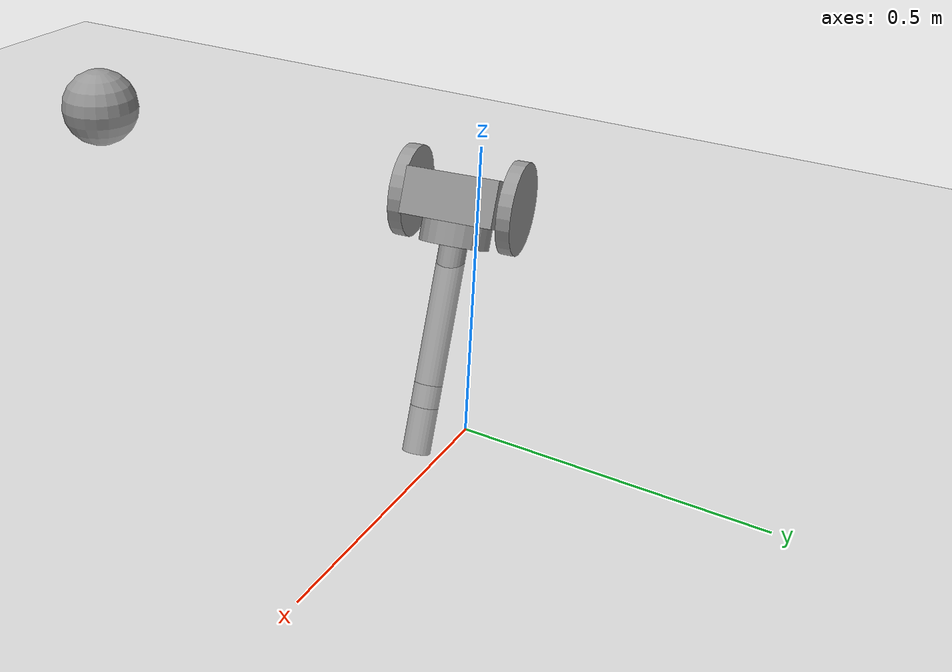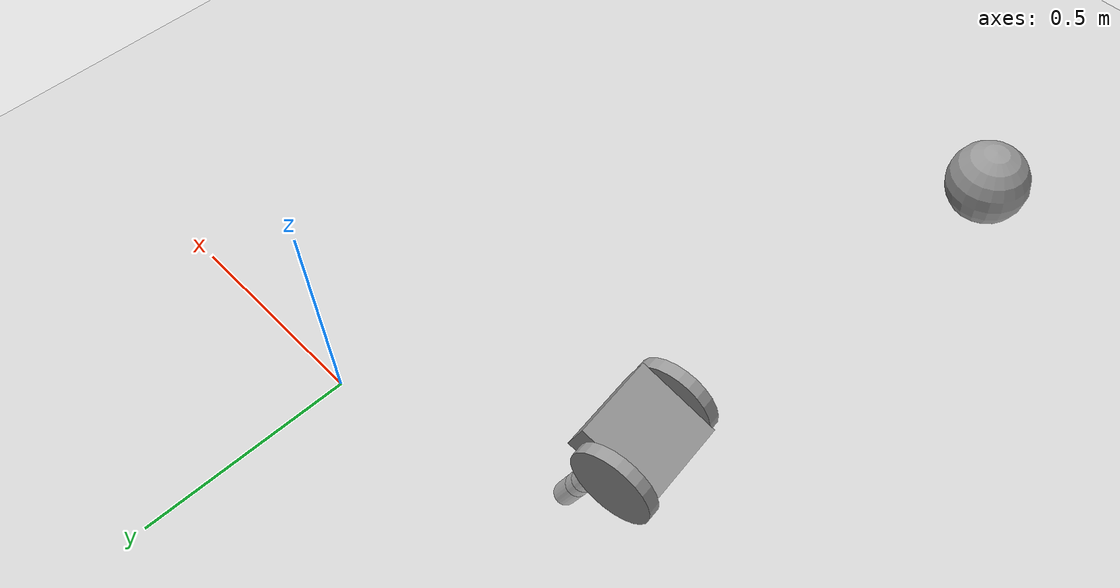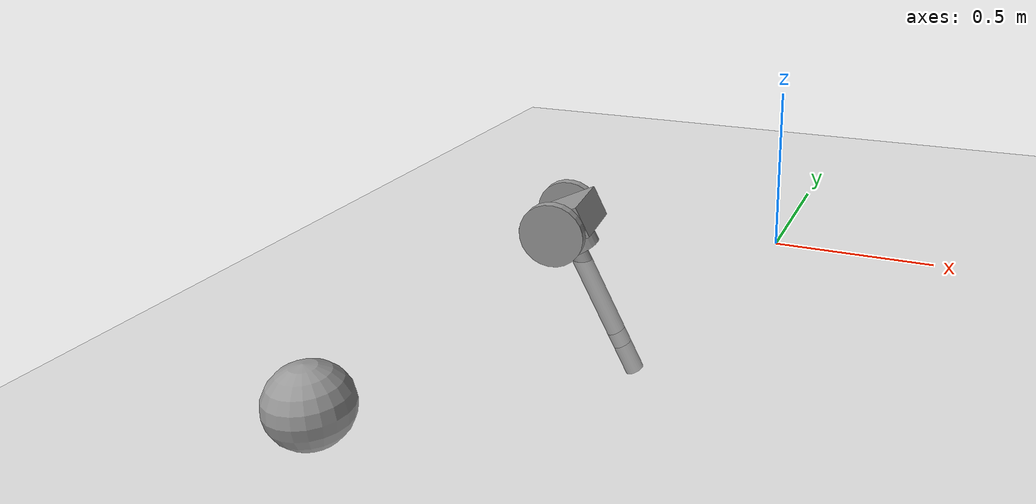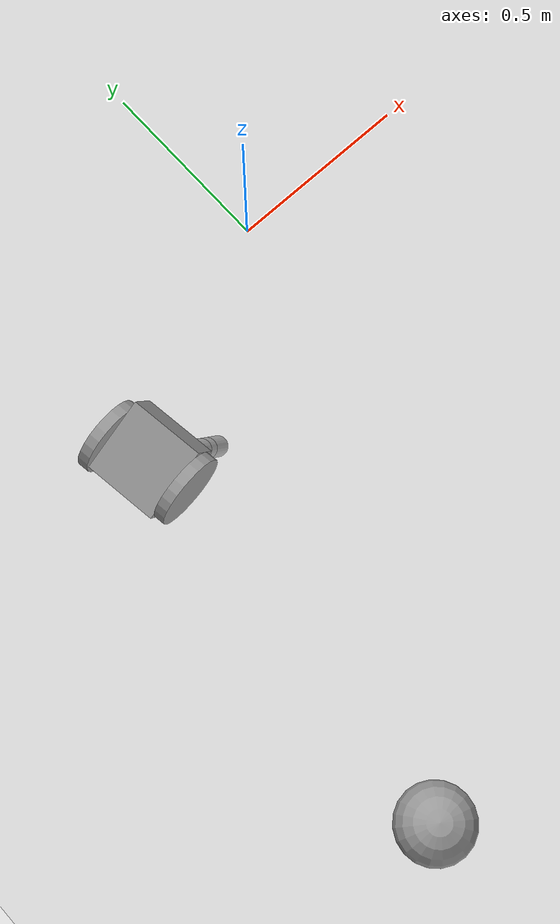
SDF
<sdf version="1.6">
 <world name="default">
  <model name="ground_plane">
   <static>1</static>
   <link name="link">
    <collision name="collision">
     <geometry><plane><normal>0 0 1</normal><size>100 100</size></plane></geometry>
     <surface><friction><ode><mu>100</mu><mu2>50</mu2></ode></friction></surface>
    </collision>
    <visual name="visual">
     <cast_shadows>0</cast_shadows>
     <geometry><plane><normal>0 0 1</normal><size>100 100</size></plane></geometry>
     <material>
      <script><uri>file://media/materials/scripts/gazebo.material</uri><name>Gazebo/Grey</name></script>
     </material>
    </visual>
   </link>
  </model>
  <model name="project1_model_0">
   <link name="link_0">
    <pose>-0 0 0.2 0 -0 0</pose>
    <inertial>
     <mass>1</mass>
     <inertia>
      <ixx>0.166667</ixx>
      <ixy>0</ixy>
      <ixz>0</ixz>
      <iyy>0.166667</iyy>
      <iyz>0</iyz>
      <izz>0.166667</izz>
     </inertia>
    </inertial>
    <visual name="visual">
     <geometry><box><size>0.2 0.2 0.1</size></box></geometry>
     <material>
      <lighting>1</lighting>
      <script><uri>file://media/materials/scripts/gazebo.material</uri><name>Gazebo/Grey</name></script>
      <shader type="pixel"><normal_map>__default__</normal_map></shader>
      <ambient>0.3 0.3 0.3 1</ambient>
      <diffuse>0.7 0.7 0.7 1</diffuse>
      <specular>0.01 0.01 0.01 1</specular>
      <emissive>0 0 0 1</emissive>
     </material>
    </visual>
    <collision name="collision">
     <geometry><box><size>0.2 0.2 0.1</size></box></geometry>
     <surface>
      <friction>
       <ode><mu>1</mu><mu2>1</mu2><fdir1>0 0 0</fdir1><slip1>0</slip1><slip2>0</slip2></ode>
       <torsional>
        <coefficient>1</coefficient>
        <patch_radius>0</patch_radius>
        <surface_radius>0</surface_radius>
        <use_patch_radius>1</use_patch_radius>
        <ode><slip>0</slip></ode>
       </torsional>
      </friction>
      <bounce><restitution_coefficient>0</restitution_coefficient><threshold>1e+06</threshold></bounce>
      <contact>
       <collide_without_contact>0</collide_without_contact>
       <collide_without_contact_bitmask>1</collide_without_contact_bitmask>
       <collide_bitmask>1</collide_bitmask>
       <ode>
        <soft_cfm>0</soft_cfm>
        <soft_erp>0.2</soft_erp>
        <kp>1e+13</kp>
        <kd>1</kd>
        <max_vel>0.01</max_vel>
        <min_depth>0</min_depth>
       </ode>
       <bullet>
        <split_impulse>1</split_impulse>
        <split_impulse_penetration_threshold>-0.01</split_impulse_penetration_threshold>
        <soft_cfm>0</soft_cfm>
        <soft_erp>0.2</soft_erp>
        <kp>1e+13</kp>
        <kd>1</kd>
       </bullet>
      </contact>
     </surface>
    </collision>
   </link>
   <link name="link_1">
    <pose>-0 -0.115013 0.2 1.5707 -0 0</pose>
    <inertial>
     <mass>1</mass>
     <inertia><ixx>0.145833</ixx><ixy>0</ixy><ixz>0</ixz><iyy>0.145833</iyy><iyz>0</iyz><izz>0.125</izz></inertia>
    </inertial>
    <visual name="visual">
     <geometry><cylinder><radius>0.1</radius><length>0.03</length></cylinder></geometry>
     <material>
      <lighting>1</lighting>
      <script><uri>file://media/materials/scripts/gazebo.material</uri><name>Gazebo/Grey</name></script>
      <shader type="pixel"><normal_map>__default__</normal_map></shader>
      <ambient>0.3 0.3 0.3 1</ambient>
      <diffuse>0.7 0.7 0.7 1</diffuse>
      <specular>0.01 0.01 0.01 1</specular>
      <emissive>0 0 0 1</emissive>
     </material>
    </visual>
    <collision name="collision">
     <geometry><cylinder><radius>0.1</radius><length>0.03</length></cylinder></geometry>
     <surface>
      <friction>
       <ode><mu>1</mu><mu2>1</mu2><fdir1>0 0 0</fdir1><slip1>0</slip1><slip2>0</slip2></ode>
       <torsional>
        <coefficient>1</coefficient>
        <patch_radius>0</patch_radius>
        <surface_radius>0</surface_radius>
        <use_patch_radius>1</use_patch_radius>
        <ode><slip>0</slip></ode>
       </torsional>
      </friction>
      <bounce><restitution_coefficient>0</restitution_coefficient><threshold>1e+06</threshold></bounce>
      <contact>
       <collide_without_contact>0</collide_without_contact>
       <collide_without_contact_bitmask>1</collide_without_contact_bitmask>
       <collide_bitmask>1</collide_bitmask>
       <ode>
        <soft_cfm>0</soft_cfm>
        <soft_erp>0.2</soft_erp>
        <kp>1e+13</kp>
        <kd>1</kd>
        <max_vel>0.01</max_vel>
        <min_depth>0</min_depth>
       </ode>
       <bullet>
        <split_impulse>1</split_impulse>
        <split_impulse_penetration_threshold>-0.01</split_impulse_penetration_threshold>
        <soft_cfm>0</soft_cfm>
        <soft_erp>0.2</soft_erp>
        <kp>1e+13</kp>
        <kd>1</kd>
       </bullet>
      </contact>
     </surface>
    </collision>
   </link>
   <link name="link_1_clone">
    <pose>0.02 0.115 0.2 1.5707 -0 0</pose>
    <inertial>
     <mass>1</mass>
     <inertia><ixx>0.145833</ixx><ixy>0</ixy><ixz>0</ixz><iyy>0.145833</iyy><iyz>0</iyz><izz>0.125</izz></inertia>
    </inertial>
    <visual name="visual">
     <geometry><cylinder><radius>0.1</radius><length>0.03</length></cylinder></geometry>
     <material>
      <lighting>1</lighting>
      <script><uri>file://media/materials/scripts/gazebo.material</uri><name>Gazebo/Grey</name></script>
      <shader type="pixel"><normal_map>__default__</normal_map></shader>
      <ambient>0.3 0.3 0.3 1</ambient>
      <diffuse>0.7 0.7 0.7 1</diffuse>
      <specular>0.01 0.01 0.01 1</specular>
      <emissive>0 0 0 1</emissive>
     </material>
    </visual>
    <collision name="collision">
     <geometry><cylinder><radius>0.1</radius><length>0.03</length></cylinder></geometry>
     <surface>
      <friction>
       <ode><mu>1</mu><mu2>1</mu2><fdir1>0 0 0</fdir1><slip1>0</slip1><slip2>0</slip2></ode>
       <torsional>
        <coefficient>1</coefficient>
        <patch_radius>0</patch_radius>
        <surface_radius>0</surface_radius>
        <use_patch_radius>1</use_patch_radius>
        <ode><slip>0</slip></ode>
       </torsional>
      </friction>
      <bounce><restitution_coefficient>0</restitution_coefficient><threshold>1e+06</threshold></bounce>
      <contact>
       <collide_without_contact>0</collide_without_contact>
       <collide_without_contact_bitmask>1</collide_without_contact_bitmask>
       <collide_bitmask>1</collide_bitmask>
       <ode>
        <soft_cfm>0</soft_cfm>
        <soft_erp>0.2</soft_erp>
        <kp>1e+13</kp>
        <kd>1</kd>
        <max_vel>0.01</max_vel>
        <min_depth>0</min_depth>
       </ode>
       <bullet>
        <split_impulse>1</split_impulse>
        <split_impulse_penetration_threshold>-0.01</split_impulse_penetration_threshold>
        <soft_cfm>0</soft_cfm>
        <soft_erp>0.2</soft_erp>
        <kp>1e+13</kp>
        <kd>1</kd>
       </bullet>
      </contact>
     </surface>
    </collision>
   </link>
   <link name="link_2">
    <pose>-0 0 0.275 0 -0 0</pose>
    <inertial>
     <mass>1</mass>
     <inertia><ixx>0.145833</ixx><ixy>0</ixy><ixz>0</ixz><iyy>0.145833</iyy><iyz>0</iyz><izz>0.125</izz></inertia>
    </inertial>
    <visual name="visual">
     <geometry><cylinder><radius>0.075</radius><length>0.05</length></cylinder></geometry>
     <material>
      <lighting>1</lighting>
      <script><uri>file://media/materials/scripts/gazebo.material</uri><name>Gazebo/Grey</name></script>
      <shader type="pixel"><normal_map>__default__</normal_map></shader>
      <ambient>0.3 0.3 0.3 1</ambient>
      <diffuse>0.7 0.7 0.7 1</diffuse>
      <specular>0.01 0.01 0.01 1</specular>
      <emissive>0 0 0 1</emissive>
     </material>
    </visual>
    <collision name="collision">
     <geometry><cylinder><radius>0.075</radius><length>0.05</length></cylinder></geometry>
     <surface>
      <friction>
       <ode><mu>1</mu><mu2>1</mu2><fdir1>0 0 0</fdir1><slip1>0</slip1><slip2>0</slip2></ode>
       <torsional>
        <coefficient>1</coefficient>
        <patch_radius>0</patch_radius>
        <surface_radius>0</surface_radius>
        <use_patch_radius>1</use_patch_radius>
        <ode><slip>0</slip></ode>
       </torsional>
      </friction>
      <bounce><restitution_coefficient>0</restitution_coefficient><threshold>1e+06</threshold></bounce>
      <contact>
       <collide_without_contact>0</collide_without_contact>
       <collide_without_contact_bitmask>1</collide_without_contact_bitmask>
       <collide_bitmask>1</collide_bitmask>
       <ode>
        <soft_cfm>0</soft_cfm>
        <soft_erp>0.2</soft_erp>
        <kp>1e+13</kp>
        <kd>1</kd>
        <max_vel>0.01</max_vel>
        <min_depth>0</min_depth>
       </ode>
       <bullet>
        <split_impulse>1</split_impulse>
        <split_impulse_penetration_threshold>-0.01</split_impulse_penetration_threshold>
        <soft_cfm>0</soft_cfm>
        <soft_erp>0.2</soft_erp>
        <kp>1e+13</kp>
        <kd>1</kd>
       </bullet>
      </contact>
     </surface>
    </collision>
   </link>
   <link name="link_2_clone">
    <pose>-0 0 0.45 0 -0 0</pose>
    <inertial>
     <mass>1</mass>
     <inertia><ixx>0.145833</ixx><ixy>0</ixy><ixz>0</ixz><iyy>0.145833</iyy><iyz>0</iyz><izz>0.125</izz></inertia>
    </inertial>
    <visual name="visual">
     <geometry><cylinder><radius>0.03</radius><length>0.3</length></cylinder></geometry>
     <material>
      <lighting>1</lighting>
      <script><uri>file://media/materials/scripts/gazebo.material</uri><name>Gazebo/Grey</name></script>
      <shader type="pixel"><normal_map>__default__</normal_map></shader>
      <ambient>0.3 0.3 0.3 1</ambient>
      <diffuse>0.7 0.7 0.7 1</diffuse>
      <specular>0.01 0.01 0.01 1</specular>
      <emissive>0 0 0 1</emissive>
     </material>
    </visual>
    <collision name="collision">
     <geometry><cylinder><radius>0.03</radius><length>0.3</length></cylinder></geometry>
     <surface>
      <friction>
       <ode><mu>1</mu><mu2>1</mu2><fdir1>0 0 0</fdir1><slip1>0</slip1><slip2>0</slip2></ode>
       <torsional>
        <coefficient>1</coefficient>
        <patch_radius>0</patch_radius>
        <surface_radius>0</surface_radius>
        <use_patch_radius>1</use_patch_radius>
        <ode><slip>0</slip></ode>
       </torsional>
      </friction>
      <bounce><restitution_coefficient>0</restitution_coefficient><threshold>1e+06</threshold></bounce>
      <contact>
       <collide_without_contact>0</collide_without_contact>
       <collide_without_contact_bitmask>1</collide_without_contact_bitmask>
       <collide_bitmask>1</collide_bitmask>
       <ode>
        <soft_cfm>0</soft_cfm>
        <soft_erp>0.2</soft_erp>
        <kp>1e+13</kp>
        <kd>1</kd>
        <max_vel>0.01</max_vel>
        <min_depth>0</min_depth>
       </ode>
       <bullet>
        <split_impulse>1</split_impulse>
        <split_impulse_penetration_threshold>-0.01</split_impulse_penetration_threshold>
        <soft_cfm>0</soft_cfm>
        <soft_erp>0.2</soft_erp>
        <kp>1e+13</kp>
        <kd>1</kd>
       </bullet>
      </contact>
     </surface>
    </collision>
   </link>
   <link name="link_2_clone_clone">
    <pose>-0 0 0.625 0 -0 0</pose>
    <inertial>
     <mass>1</mass>
     <inertia><ixx>0.145833</ixx><ixy>0</ixy><ixz>0</ixz><iyy>0.145833</iyy><iyz>0</iyz><izz>0.125</izz></inertia>
    </inertial>
    <visual name="visual">
     <geometry><cylinder><radius>0.03</radius><length>0.05</length></cylinder></geometry>
     <material>
      <lighting>1</lighting>
      <script><uri>file://media/materials/scripts/gazebo.material</uri><name>Gazebo/Grey</name></script>
      <shader type="pixel"><normal_map>__default__</normal_map></shader>
      <ambient>0.3 0.3 0.3 1</ambient>
      <diffuse>0.7 0.7 0.7 1</diffuse>
      <specular>0.01 0.01 0.01 1</specular>
      <emissive>0 0 0 1</emissive>
     </material>
    </visual>
    <collision name="collision">
     <geometry><cylinder><radius>0.03</radius><length>0.05</length></cylinder></geometry>
     <surface>
      <friction>
       <ode><mu>1</mu><mu2>1</mu2><fdir1>0 0 0</fdir1><slip1>0</slip1><slip2>0</slip2></ode>
       <torsional>
        <coefficient>1</coefficient>
        <patch_radius>0</patch_radius>
        <surface_radius>0</surface_radius>
        <use_patch_radius>1</use_patch_radius>
        <ode><slip>0</slip></ode>
       </torsional>
      </friction>
      <bounce><restitution_coefficient>0</restitution_coefficient><threshold>1e+06</threshold></bounce>
      <contact>
       <collide_without_contact>0</collide_without_contact>
       <collide_without_contact_bitmask>1</collide_without_contact_bitmask>
       <collide_bitmask>1</collide_bitmask>
       <ode>
        <soft_cfm>0</soft_cfm>
        <soft_erp>0.2</soft_erp>
        <kp>1e+13</kp>
        <kd>1</kd>
        <max_vel>0.01</max_vel>
        <min_depth>0</min_depth>
       </ode>
       <bullet>
        <split_impulse>1</split_impulse>
        <split_impulse_penetration_threshold>-0.01</split_impulse_penetration_threshold>
        <soft_cfm>0</soft_cfm>
        <soft_erp>0.2</soft_erp>
        <kp>1e+13</kp>
        <kd>1</kd>
       </bullet>
      </contact>
     </surface>
    </collision>
   </link>
   <link name="link_2_clone_clone_0">
    <pose>-0 0 0.7 0 -0 0</pose>
    <inertial>
     <mass>1</mass>
     <inertia><ixx>0.145833</ixx><ixy>0</ixy><ixz>0</ixz><iyy>0.145833</iyy><iyz>0</iyz><izz>0.125</izz></inertia>
    </inertial>
    <visual name="visual">
     <geometry><cylinder><radius>0.03</radius><length>0.1</length></cylinder></geometry>
     <material>
      <lighting>1</lighting>
      <script><uri>file://media/materials/scripts/gazebo.material</uri><name>Gazebo/Grey</name></script>
      <shader type="pixel"><normal_map>__default__</normal_map></shader>
      <ambient>0.3 0.3 0.3 1</ambient>
      <diffuse>0.7 0.7 0.7 1</diffuse>
      <specular>0.01 0.01 0.01 1</specular>
      <emissive>0 0 0 1</emissive>
     </material>
    </visual>
    <collision name="collision">
     <geometry><cylinder><radius>0.03</radius><length>0.1</length></cylinder></geometry>
     <surface>
      <friction>
       <ode><mu>1</mu><mu2>1</mu2><fdir1>0 0 0</fdir1><slip1>0</slip1><slip2>0</slip2></ode>
       <torsional>
        <coefficient>1</coefficient>
        <patch_radius>0</patch_radius>
        <surface_radius>0</surface_radius>
        <use_patch_radius>1</use_patch_radius>
        <ode><slip>0</slip></ode>
       </torsional>
      </friction>
      <bounce><restitution_coefficient>0</restitution_coefficient><threshold>1e+06</threshold></bounce>
      <contact>
       <collide_without_contact>0</collide_without_contact>
       <collide_without_contact_bitmask>1</collide_without_contact_bitmask>
       <collide_bitmask>1</collide_bitmask>
       <ode>
        <soft_cfm>0</soft_cfm>
        <soft_erp>0.2</soft_erp>
        <kp>1e+13</kp>
        <kd>1</kd>
        <max_vel>0.01</max_vel>
        <min_depth>0</min_depth>
       </ode>
       <bullet>
        <split_impulse>1</split_impulse>
        <split_impulse_penetration_threshold>-0.01</split_impulse_penetration_threshold>
        <soft_cfm>0</soft_cfm>
        <soft_erp>0.2</soft_erp>
        <kp>1e+13</kp>
        <kd>1</kd>
       </bullet>
      </contact>
     </surface>
    </collision>
   </link>
   <joint name="link_0_JOINT_0" type="revolute">
    <parent>link_0</parent>
    <child>link_1</child>
    <axis>
     <xyz>0 0 1</xyz>
     <use_parent_model_frame>0</use_parent_model_frame>
     <limit>
      <lower>-1.79769e+308</lower>
      <upper>1.79769e+308</upper>
      <effort>-1</effort>
      <velocity>-1</velocity>
     </limit>
     <dynamics>
      <spring_reference>0</spring_reference>
      <spring_stiffness>0</spring_stiffness>
      <damping>0</damping>
     </dynamics>
    </axis>
    <physics>
     <ode><limit><cfm>0</cfm><erp>0.2</erp></limit><suspension><cfm>0</cfm><erp>0.2</erp></suspension></ode>
    </physics>
   </joint>
   <joint name="link_0_JOINT_3" type="revolute">
    <parent>link_0</parent>
    <child>link_1_clone</child>
    <axis>
     <xyz>0 0 1</xyz>
     <use_parent_model_frame>0</use_parent_model_frame>
     <limit>
      <lower>-1.79769e+308</lower>
      <upper>1.79769e+308</upper>
      <effort>-1</effort>
      <velocity>-1</velocity>
     </limit>
     <dynamics>
      <spring_reference>0</spring_reference>
      <spring_stiffness>0</spring_stiffness>
      <damping>0</damping>
     </dynamics>
    </axis>
    <physics>
     <ode><limit><cfm>0</cfm><erp>0.2</erp></limit><suspension><cfm>0</cfm><erp>0.2</erp></suspension></ode>
    </physics>
   </joint>
   <joint name="link_0_JOINT_4" type="revolute">
    <parent>link_0</parent>
    <child>link_2</child>
    <axis>
     <xyz>0 0 1</xyz>
     <use_parent_model_frame>0</use_parent_model_frame>
     <limit>
      <lower>-1.79769e+308</lower>
      <upper>1.79769e+308</upper>
      <effort>-1</effort>
      <velocity>-1</velocity>
     </limit>
     <dynamics>
      <spring_reference>0</spring_reference>
      <spring_stiffness>0</spring_stiffness>
      <damping>0</damping>
     </dynamics>
    </axis>
    <physics>
     <ode><limit><cfm>0</cfm><erp>0.2</erp></limit><suspension><cfm>0</cfm><erp>0.2</erp></suspension></ode>
    </physics>
   </joint>
   <joint name="link_2_JOINT_5" type="revolute">
    <parent>link_2</parent>
    <child>link_2_clone</child>
    <pose>0 0 -0.15 0 -0 0</pose>
    <axis>
     <xyz>0 1 0</xyz>
     <use_parent_model_frame>0</use_parent_model_frame>
     <limit>
      <lower>-1.79769e+308</lower>
      <upper>1.79769e+308</upper>
      <effort>-1</effort>
      <velocity>-1</velocity>
     </limit>
     <dynamics>
      <spring_reference>0</spring_reference>
      <spring_stiffness>0</spring_stiffness>
      <damping>0</damping>
     </dynamics>
    </axis>
    <physics>
     <ode><limit><cfm>0</cfm><erp>0.2</erp></limit><suspension><cfm>0</cfm><erp>0.2</erp></suspension></ode>
    </physics>
   </joint>
   <joint name="link_2_clone_JOINT_6" type="revolute">
    <parent>link_2_clone</parent>
    <child>link_2_clone_clone</child>
    <pose>0 0 -0.025 0 -0 0</pose>
    <axis>
     <xyz>1 0 0</xyz>
     <use_parent_model_frame>0</use_parent_model_frame>
     <limit>
      <lower>-1.79769e+308</lower>
      <upper>1.79769e+308</upper>
      <effort>-1</effort>
      <velocity>-1</velocity>
     </limit>
     <dynamics>
      <spring_reference>0</spring_reference>
      <spring_stiffness>0</spring_stiffness>
      <damping>0</damping>
     </dynamics>
    </axis>
    <physics>
     <ode><limit><cfm>0</cfm><erp>0.2</erp></limit><suspension><cfm>0</cfm><erp>0.2</erp></suspension></ode>
    </physics>
   </joint>
   <joint name="link_2_clone_clone_JOINT_7" type="revolute">
    <parent>link_2_clone_clone</parent>
    <child>link_2_clone_clone_0</child>
    <pose>0 0 -0.05 0 -0 0</pose>
    <axis>
     <xyz>1 0 0</xyz>
     <use_parent_model_frame>0</use_parent_model_frame>
     <limit>
      <lower>-1.79769e+308</lower>
      <upper>1.79769e+308</upper>
      <effort>-1</effort>
      <velocity>-1</velocity>
     </limit>
     <dynamics>
      <spring_reference>0</spring_reference>
      <spring_stiffness>0</spring_stiffness>
      <damping>0</damping>
     </dynamics>
    </axis>
    <physics>
     <ode><limit><cfm>0</cfm><erp>0.2</erp></limit><suspension><cfm>0</cfm><erp>0.2</erp></suspension></ode>
    </physics>
   </joint>
   <static>0</static>
   <pose>-0.684111 -0.33641 0.304957 -3.1357 0.41145 -2.99783</pose>
  </model>
  <model name="white_ball">
   <link name="link_0">
    <inertial>
     <mass>1</mass>
     <inertia><ixx>0.1</ixx><ixy>0</ixy><ixz>0</ixz><iyy>0.1</iyy><iyz>0</iyz><izz>0.1</izz></inertia>
    </inertial>
    <visual name="visual">
     <geometry><sphere><radius>0.1</radius></sphere></geometry>
     <material>
      <lighting>1</lighting>
      <script><uri>file://media/materials/scripts/gazebo.material</uri><name>Gazebo/Grey</name></script>
      <shader type="pixel"><normal_map>__default__</normal_map></shader>
      <ambient>1 1 1 1</ambient>
      <diffuse>1 1 1 1</diffuse>
      <specular>1 1 1 1</specular>
      <emissive>1 1 1 1</emissive>
     </material>
    </visual>
    <collision name="collision">
     <geometry><sphere><radius>0.1</radius></sphere></geometry>
     <surface>
      <friction>
       <ode><mu>1</mu><mu2>1</mu2><fdir1>0 0 0</fdir1><slip1>0</slip1><slip2>0</slip2></ode>
       <torsional>
        <coefficient>1</coefficient>
        <patch_radius>0</patch_radius>
        <surface_radius>0</surface_radius>
        <use_patch_radius>1</use_patch_radius>
        <ode><slip>0</slip></ode>
       </torsional>
      </friction>
      <bounce><restitution_coefficient>0</restitution_coefficient><threshold>1e+06</threshold></bounce>
      <contact>
       <collide_without_contact>0</collide_without_contact>
       <collide_without_contact_bitmask>1</collide_without_contact_bitmask>
       <collide_bitmask>1</collide_bitmask>
       <ode>
        <soft_cfm>0</soft_cfm>
        <soft_erp>0.2</soft_erp>
        <kp>1e+13</kp>
        <kd>1</kd>
        <max_vel>0.01</max_vel>
        <min_depth>0</min_depth>
       </ode>
       <bullet>
        <split_impulse>1</split_impulse>
        <split_impulse_penetration_threshold>-0.01</split_impulse_penetration_threshold>
        <soft_cfm>0</soft_cfm>
        <soft_erp>0.2</soft_erp>
        <kp>1e+13</kp>
        <kd>1</kd>
       </bullet>
      </contact>
     </surface>
    </collision>
   </link>
   <static>0</static>
   <pose>-0.680482 -1.41457 0.1 0 -0 0</pose>
  </model>
 </world>
</sdf>
